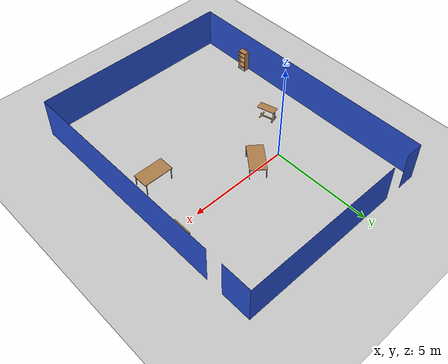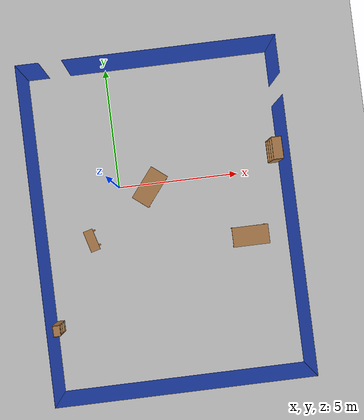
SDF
<sdf version="1.6">
 <world name="default">
  <model name="ground_plane">
   <static>1</static>
   <link name="link">
    <collision name="collision">
     <geometry><plane><normal>0 0 1</normal><size>100 100</size></plane></geometry>
     <surface><friction><ode><mu>100</mu><mu2>50</mu2></ode></friction></surface>
    </collision>
    <visual name="visual">
     <cast_shadows>0</cast_shadows>
     <geometry><plane><normal>0 0 1</normal><size>100 100</size></plane></geometry>
     <material>
      <script><uri>file://media/materials/scripts/gazebo.material</uri><name>Gazebo/Grey</name></script>
     </material>
    </visual>
   </link>
  </model>
  <model name="apartment_wall_collision">
   <link name="link">
    <inertial>
     <mass>50</mass>
     <inertia><ixx>1</ixx><ixy>0</ixy><ixz>0</ixz><iyy>1</iyy><iyz>0</iyz><izz>1</izz></inertia>
    </inertial>
    <visual name="wall_x00y00_x00y15">
     <pose>-0.002 6.59 1.04 0 -0 0</pose>
     <geometry><box><size>0.002 13.2 2.08</size></box></geometry>
     <material>
      <script>
       <uri>model://base_materials/color/scripts</uri>
       <name>hsr_color/cornflowerblue_transparency1</name>
      </script>
     </material>
    </visual>
    <collision name="wall_x00y00_x00y15">
     <pose>-0.002 6.59 1.04 0 -0 0</pose>
     <geometry><box><size>0.002 13.2 2.08</size></box></geometry>
    </collision>
    <visual name="wall_x00y00_x13y00">
     <pose>5.0375 -0.002 1.04 0 -0 0</pose>
     <geometry><box><size>10.08 0.002 2.08</size></box></geometry>
     <material>
      <script>
       <uri>model://base_materials/color/scripts</uri>
       <name>hsr_color/cornflowerblue_transparency1</name>
      </script>
     </material>
    </visual>
    <collision name="wall_x00y00_x13y00">
     <pose>5.0375 -0.002 1.04 0 -0 0</pose>
     <geometry><box><size>10.08 0.002 2.08</size></box></geometry>
    </collision>
    <visual name="wall_x13y00_x13y12">
     <pose>10.077 5.42 1.04 0 -0 0</pose>
     <geometry><box><size>0.002 10.84 2.08</size></box></geometry>
     <material>
      <script>
       <uri>model://base_materials/color/scripts</uri>
       <name>hsr_color/cornflowerblue_transparency1</name>
      </script>
     </material>
    </visual>
    <collision name="wall_x13y00_x13y12">
     <pose>10.077 5.42 1.04 0 -0 0</pose>
     <geometry><box><size>0.002 10.84 2.08</size></box></geometry>
    </collision>
    <visual name="wall_x13y14_x13y16">
     <pose>10.077 12.43 1.04 0 -0 0</pose>
     <geometry><box><size>0.002 1.5 2.08</size></box></geometry>
     <material>
      <script>
       <uri>model://base_materials/color/scripts</uri>
       <name>hsr_color/cornflowerblue_transparency1</name>
      </script>
     </material>
    </visual>
    <collision name="wall_x13y14_x13y16">
     <pose>10.077 12.43 1.04 0 -0 0</pose>
     <geometry><box><size>0.002 1.5 2.08</size></box></geometry>
    </collision>
    <visual name="wall_x00y16_x01y16">
     <pose>0.4525 13.182 1.04 0 -0 0</pose>
     <geometry><box><size>0.904 0.002 2.08</size></box></geometry>
     <material>
      <script>
       <uri>model://base_materials/color/scripts</uri>
       <name>hsr_color/cornflowerblue_transparency1</name>
      </script>
     </material>
    </visual>
    <collision name="wall_x00y16_x01y16">
     <pose>0.4525 13.182 1.04 0 -0 0</pose>
     <geometry><box><size>0.904 0.002 2.08</size></box></geometry>
    </collision>
    <visual name="wall_x03y16_x13y16">
     <pose>5.948 13.182 1.04 0 -0 0</pose>
     <geometry><box><size>8.3 0.002 2.08</size></box></geometry>
     <material>
      <script>
       <uri>model://base_materials/color/scripts</uri>
       <name>hsr_color/cornflowerblue_transparency1</name>
      </script>
     </material>
    </visual>
    <collision name="wall_x03y16_x13y16">
     <pose>5.948 13.182 1.04 0 -0 0</pose>
     <geometry><box><size>8.3 0.002 2.08</size></box></geometry>
    </collision>
    <velocity_decay><linear>0</linear><angular>0</angular></velocity_decay>
   </link>
   <static>1</static>
   <pose>-3.26861 -8.19915 0 0 -0 0</pose>
  </model>
  <model name="hcr_shefl_2">
   <link name="link">
    <inertial>
     <mass>5</mass>
     <inertia><ixx>1</ixx><ixy>0</ixy><ixz>0</ixz><iyy>1</iyy><iyz>0</iyz><izz>1</izz></inertia>
    </inertial>
    <visual name="left_board">
     <pose>-0.1475 0.009 -0.598 0 -0 0</pose>
     <geometry><box><size>0.295 0.018 1.196</size></box></geometry>
     <material>
      <script><uri>model://base_materials/wood/scripts/wood.material</uri><name>base_materials/wood</name></script>
     </material>
    </visual>
    <collision name="collision_left_board">
     <pose>-0.1475 0.009 -0.598 0 -0 0</pose>
     <geometry><box><size>0.295 0.018 1.196</size></box></geometry>
    </collision>
    <visual name="right_board">
     <pose>-0.1475 0.441 -0.598 0 -0 0</pose>
     <geometry><box><size>0.295 0.018 1.196</size></box></geometry>
     <material>
      <script><uri>model://base_materials/wood/scripts/wood.material</uri><name>base_materials/wood</name></script>
     </material>
    </visual>
    <collision name="collision_right_board">
     <pose>-0.1475 0.441 -0.598 0 -0 0</pose>
     <geometry><box><size>0.295 0.018 1.196</size></box></geometry>
    </collision>
    <visual name="top_board">
     <pose>-0.1475 0.225 -0.0175 0 -0 0</pose>
     <geometry><box><size>0.295 0.414 0.035</size></box></geometry>
     <material>
      <script><uri>model://base_materials/wood/scripts/wood.material</uri><name>base_materials/wood</name></script>
     </material>
    </visual>
    <collision name="collision_top_board">
     <pose>-0.1475 0.225 -0.0175 0 -0 0</pose>
     <geometry><box><size>0.295 0.414 0.035</size></box></geometry>
    </collision>
    <visual name="1st_shelf">
     <pose>-0.162 0.225 -0.311 0 -0 0</pose>
     <geometry><box><size>0.266 0.414 0.018</size></box></geometry>
     <material>
      <script><uri>model://base_materials/wood/scripts/wood.material</uri><name>base_materials/wood</name></script>
     </material>
    </visual>
    <collision name="collision_1st_shelf">
     <pose>-0.162 0.225 -0.311 0 -0 0</pose>
     <geometry><box><size>0.266 0.414 0.018</size></box></geometry>
    </collision>
    <visual name="2nd_shelf">
     <pose>-0.162 0.225 -0.613 0 -0 0</pose>
     <geometry><box><size>0.266 0.414 0.018</size></box></geometry>
     <material>
      <script><uri>model://base_materials/wood/scripts/wood.material</uri><name>base_materials/wood</name></script>
     </material>
    </visual>
    <collision name="collision_2nd_shelf">
     <pose>-0.162 0.225 -0.613 0 -0 0</pose>
     <geometry><box><size>0.266 0.414 0.018</size></box></geometry>
    </collision>
    <visual name="bottom_board">
     <pose>-0.1475 0.225 -1.0335 0 -0 0</pose>
     <geometry><box><size>0.295 0.414 0.325</size></box></geometry>
     <material>
      <script><uri>model://base_materials/wood/scripts/wood.material</uri><name>base_materials/wood</name></script>
     </material>
    </visual>
    <collision name="collision_bottom_board">
     <pose>-0.1475 0.225 -1.0335 0 -0 0</pose>
     <geometry><box><size>0.295 0.414 0.325</size></box></geometry>
    </collision>
    <visual name="back_board">
     <pose>-0.286 0.225 -0.598 0 -0 0</pose>
     <geometry><box><size>0.018 0.414 1.196</size></box></geometry>
     <material>
      <script><uri>model://base_materials/wood/scripts/wood.material</uri><name>base_materials/wood</name></script>
     </material>
    </visual>
    <collision name="collision_back_board">
     <pose>-0.286 0.225 -0.598 0 -0 0</pose>
     <geometry><box><size>0.018 0.414 1.196</size></box></geometry>
    </collision>
    <visual name="marker_0030">
     <pose>0 0.32 -1.015 0 -0 0</pose>
     <geometry><box><size>0.0001 0.21 0.21</size></box></geometry>
     <material>
      <script>
       <uri>model://hcr_shelf_2/marker/0030/scripts</uri>
       <uri>model://hcr_shelf_2/marker/0030/textures</uri>
       <name>Marker/0030</name>
      </script>
     </material>
    </visual>
    <collision name="collision_marker_0030">
     <pose>0 0.32 -1.015 0 -0 0</pose>
     <geometry><box><size>0.0001 0.21 0.21</size></box></geometry>
    </collision>
    <velocity_decay><linear>0</linear><angular>0</angular></velocity_decay>
   </link>
   <static>1</static>
   <pose>-2.96206 -5.70339 1.09688 0 -0 0</pose>
  </model>
  <model name="table">
   <static>1</static>
   <link name="link">
    <collision name="surface">
     <pose>0 0 1 0 -0 0</pose>
     <geometry><box><size>1.5 0.8 0.03</size></box></geometry>
     <surface><friction><ode><mu>0.6</mu><mu2>0.6</mu2></ode></friction></surface>
    </collision>
    <visual name="visual1">
     <pose>0 0 1 0 -0 0</pose>
     <geometry><box><size>1.5 0.8 0.03</size></box></geometry>
     <material>
      <script><uri>file://media/materials/scripts/gazebo.material</uri><name>Gazebo/Wood</name></script>
     </material>
    </visual>
    <collision name="front_left_leg">
     <pose>0.68 0.38 0.5 0 -0 0</pose>
     <geometry><cylinder><radius>0.02</radius><length>1</length></cylinder></geometry>
    </collision>
    <visual name="front_left_leg">
     <pose>0.68 0.38 0.5 0 -0 0</pose>
     <geometry><cylinder><radius>0.02</radius><length>1</length></cylinder></geometry>
     <material>
      <script><uri>file://media/materials/scripts/gazebo.material</uri><name>Gazebo/Grey</name></script>
     </material>
    </visual>
    <collision name="front_right_leg">
     <pose>0.68 -0.38 0.5 0 -0 0</pose>
     <geometry><cylinder><radius>0.02</radius><length>1</length></cylinder></geometry>
    </collision>
    <visual name="front_right_leg">
     <pose>0.68 -0.38 0.5 0 -0 0</pose>
     <geometry><cylinder><radius>0.02</radius><length>1</length></cylinder></geometry>
     <material>
      <script><uri>file://media/materials/scripts/gazebo.material</uri><name>Gazebo/Grey</name></script>
     </material>
    </visual>
    <collision name="back_right_leg">
     <pose>-0.68 -0.38 0.5 0 -0 0</pose>
     <geometry><cylinder><radius>0.02</radius><length>1</length></cylinder></geometry>
    </collision>
    <visual name="back_right_leg">
     <pose>-0.68 -0.38 0.5 0 -0 0</pose>
     <geometry><cylinder><radius>0.02</radius><length>1</length></cylinder></geometry>
     <material>
      <script><uri>file://media/materials/scripts/gazebo.material</uri><name>Gazebo/Grey</name></script>
     </material>
    </visual>
    <collision name="back_left_leg">
     <pose>-0.68 0.38 0.5 0 -0 0</pose>
     <geometry><cylinder><radius>0.02</radius><length>1</length></cylinder></geometry>
    </collision>
    <visual name="back_left_leg">
     <pose>-0.68 0.38 0.5 0 -0 0</pose>
     <geometry><cylinder><radius>0.02</radius><length>1</length></cylinder></geometry>
     <material>
      <script><uri>file://media/materials/scripts/gazebo.material</uri><name>Gazebo/Grey</name></script>
     </material>
    </visual>
   </link>
   <pose>1.2942 -0.166561 -0.380127 0 -0 0.901313</pose>
  </model>
  <model name="bookshelf_clone_0">
   <static>1</static>
   <link name="link">
    <inertial><mass>1</mass></inertial>
    <collision name="back">
     <pose>0 0.005 0.6 0 -0 0</pose>
     <geometry><box><size>0.9 0.01 1.2</size></box></geometry>
    </collision>
    <visual name="visual1">
     <pose>0 0.005 0.6 0 -0 0</pose>
     <geometry><box><size>0.9 0.01 1.2</size></box></geometry>
     <material>
      <script><uri>file://media/materials/scripts/gazebo.material</uri><name>Gazebo/Wood</name></script>
     </material>
    </visual>
    <collision name="left_side">
     <pose>0.45 -0.195 0.6 0 -0 0</pose>
     <geometry><box><size>0.02 0.4 1.2</size></box></geometry>
    </collision>
    <visual name="visual2">
     <pose>0.45 -0.195 0.6 0 -0 0</pose>
     <geometry><box><size>0.02 0.4 1.2</size></box></geometry>
     <material>
      <script><uri>file://media/materials/scripts/gazebo.material</uri><name>Gazebo/Wood</name></script>
     </material>
    </visual>
    <collision name="right_side">
     <pose>-0.45 -0.195 0.6 0 -0 0</pose>
     <geometry><box><size>0.02 0.4 1.2</size></box></geometry>
    </collision>
    <visual name="visual3">
     <pose>-0.45 -0.195 0.6 0 -0 0</pose>
     <geometry><box><size>0.02 0.4 1.2</size></box></geometry>
     <material>
      <script><uri>file://media/materials/scripts/gazebo.material</uri><name>Gazebo/Wood</name></script>
     </material>
    </visual>
    <collision name="bottom">
     <pose>0 -0.195 0.03 0 -0 0</pose>
     <geometry><box><size>0.88 0.4 0.06</size></box></geometry>
    </collision>
    <visual name="visual4">
     <pose>0 -0.195 0.03 0 -0 0</pose>
     <geometry><box><size>0.88 0.4 0.06</size></box></geometry>
     <material>
      <script><uri>file://media/materials/scripts/gazebo.material</uri><name>Gazebo/Wood</name></script>
     </material>
    </visual>
    <collision name="top">
     <pose>0 -0.195 1.19 0 -0 0</pose>
     <geometry><box><size>0.88 0.4 0.02</size></box></geometry>
    </collision>
    <visual name="visual5">
     <pose>0 -0.195 1.19 0 -0 0</pose>
     <geometry><box><size>0.88 0.4 0.02</size></box></geometry>
     <material>
      <script><uri>file://media/materials/scripts/gazebo.material</uri><name>Gazebo/Wood</name></script>
     </material>
    </visual>
    <collision name="low_shelf">
     <pose>0 -0.195 0.43 0 -0 0</pose>
     <geometry><box><size>0.88 0.4 0.02</size></box></geometry>
    </collision>
    <visual name="visual6">
     <pose>0 -0.195 0.43 0 -0 0</pose>
     <geometry><box><size>0.88 0.4 0.02</size></box></geometry>
     <material>
      <script><uri>file://media/materials/scripts/gazebo.material</uri><name>Gazebo/Wood</name></script>
     </material>
    </visual>
    <collision name="high_shelf">
     <pose>0 -0.195 0.8 0 -0 0</pose>
     <geometry><box><size>0.88 0.4 0.02</size></box></geometry>
    </collision>
    <visual name="visual7">
     <pose>0 -0.195 0.8 0 -0 0</pose>
     <geometry><box><size>0.88 0.4 0.02</size></box></geometry>
     <material>
      <script><uri>file://media/materials/scripts/gazebo.material</uri><name>Gazebo/Wood</name></script>
     </material>
    </visual>
   </link>
   <pose>6.75738 0.730992 0 0 0 -1.5707</pose>
  </model>
  <model name="table_clone">
   <static>1</static>
   <link name="link">
    <collision name="surface">
     <pose>0 0 1 0 -0 0</pose>
     <geometry><box><size>1.5 0.8 0.03</size></box></geometry>
     <surface><friction><ode><mu>0.6</mu><mu2>0.6</mu2></ode></friction></surface>
    </collision>
    <visual name="visual1">
     <pose>0 0 1 0 -0 0</pose>
     <geometry><box><size>1.5 0.8 0.03</size></box></geometry>
     <material>
      <script><uri>file://media/materials/scripts/gazebo.material</uri><name>Gazebo/Wood</name></script>
     </material>
    </visual>
    <collision name="front_left_leg">
     <pose>0.68 0.38 0.5 0 -0 0</pose>
     <geometry><cylinder><radius>0.02</radius><length>1</length></cylinder></geometry>
    </collision>
    <visual name="front_left_leg">
     <pose>0.68 0.38 0.5 0 -0 0</pose>
     <geometry><cylinder><radius>0.02</radius><length>1</length></cylinder></geometry>
     <material>
      <script><uri>file://media/materials/scripts/gazebo.material</uri><name>Gazebo/Grey</name></script>
     </material>
    </visual>
    <collision name="front_right_leg">
     <pose>0.68 -0.38 0.5 0 -0 0</pose>
     <geometry><cylinder><radius>0.02</radius><length>1</length></cylinder></geometry>
    </collision>
    <visual name="front_right_leg">
     <pose>0.68 -0.38 0.5 0 -0 0</pose>
     <geometry><cylinder><radius>0.02</radius><length>1</length></cylinder></geometry>
     <material>
      <script><uri>file://media/materials/scripts/gazebo.material</uri><name>Gazebo/Grey</name></script>
     </material>
    </visual>
    <collision name="back_right_leg">
     <pose>-0.68 -0.38 0.5 0 -0 0</pose>
     <geometry><cylinder><radius>0.02</radius><length>1</length></cylinder></geometry>
    </collision>
    <visual name="back_right_leg">
     <pose>-0.68 -0.38 0.5 0 -0 0</pose>
     <geometry><cylinder><radius>0.02</radius><length>1</length></cylinder></geometry>
     <material>
      <script><uri>file://media/materials/scripts/gazebo.material</uri><name>Gazebo/Grey</name></script>
     </material>
    </visual>
    <collision name="back_left_leg">
     <pose>-0.68 0.38 0.5 0 -0 0</pose>
     <geometry><cylinder><radius>0.02</radius><length>1</length></cylinder></geometry>
    </collision>
    <visual name="back_left_leg">
     <pose>-0.68 0.38 0.5 0 -0 0</pose>
     <geometry><cylinder><radius>0.02</radius><length>1</length></cylinder></geometry>
     <material>
      <script><uri>file://media/materials/scripts/gazebo.material</uri><name>Gazebo/Grey</name></script>
     </material>
    </visual>
   </link>
   <pose>5.16052 -2.64347 -0.380127 0 -0 0</pose>
  </model>
  <model name="bed_table">
   <link name="link">
    <inertial>
     <pose>0 0.449 0.001 0 -0 0</pose>
     <mass>10</mass>
     <inertia><ixx>1</ixx><ixy>0</ixy><ixz>0</ixz><iyy>1</iyy><iyz>0</iyz><izz>1</izz></inertia>
    </inertial>
    <visual name="top_board">
     <pose>0 0.449 0.625 0 -0 0</pose>
     <geometry><box><size>0.398 0.898 0.02</size></box></geometry>
     <material>
      <script><uri>model://base_materials/wood/scripts/wood.material</uri><name>base_materials/wood</name></script>
     </material>
    </visual>
    <collision name="collision_top_board">
     <pose>0 0.449 0.625 0 -0 0</pose>
     <geometry><box><size>0.398 0.898 0.02</size></box></geometry>
    </collision>
    <visual name="right_pole">
     <pose>0 0.817 0.3515 0 -0 0</pose>
     <geometry><box><size>0.072 0.094 0.527</size></box></geometry>
     <material>
      <script><uri>model://base_materials/color/scripts</uri><name>hsr_color/grey</name></script>
     </material>
    </visual>
    <collision name="collision_right_pole">
     <pose>0 0.817 0.3515 0 -0 0</pose>
     <geometry><box><size>0.072 0.094 0.527</size></box></geometry>
    </collision>
    <visual name="right_bottom_pole">
     <pose>0 0.8225 0.044 0 -0 0</pose>
     <geometry><box><size>0.42 0.063 0.088</size></box></geometry>
     <material>
      <script><uri>model://base_materials/wood/scripts/wood.material</uri><name>base_materials/wood</name></script>
     </material>
    </visual>
    <collision name="collision_right_bottom_pole">
     <pose>0 0.8225 0.044 0 -0 0</pose>
     <geometry><box><size>0.42 0.063 0.088</size></box></geometry>
    </collision>
    <visual name="bottom_center_pole">
     <pose>0 0.502 0.03 0 -0 0</pose>
     <geometry><box><size>0.06 0.578 0.03</size></box></geometry>
     <material>
      <script><uri>model://base_materials/wood/scripts/wood.material</uri><name>base_materials/wood</name></script>
     </material>
    </visual>
    <collision name="collision_bottom_center_pole">
     <pose>0 0.502 0.03 0 -0 0</pose>
     <geometry><box><size>0.06 0.578 0.03</size></box></geometry>
    </collision>
    <visual name="left_bottom_pole">
     <pose>0 0.18 0.0325 0 -0 0</pose>
     <geometry><box><size>0.418 0.066 0.025</size></box></geometry>
     <material>
      <script><uri>model://base_materials/wood/scripts/wood.material</uri><name>base_materials/wood</name></script>
     </material>
    </visual>
    <collision name="collision_left_bottom_pole">
     <pose>0 0.18 0.0325 0 -0 0</pose>
     <geometry><box><size>0.418 0.066 0.025</size></box></geometry>
    </collision>
    <visual name="marker_0010">
     <pose>0 0.14 0.093 0 -0 0</pose>
     <geometry><box><size>0.09 0.001 0.09</size></box></geometry>
     <material>
      <script>
       <uri>model://bed_table/marker/0010/scripts</uri>
       <uri>model://bed_table/marker/0010/textures</uri>
       <name>Marker/0010</name>
      </script>
     </material>
    </visual>
    <collision name="collision_marker_0010">
     <pose>0 0.14 0.093 0 -0 0</pose>
     <geometry><box><size>0.09 0.001 0.09</size></box></geometry>
    </collision>
    <visual name="marker_0010_back_plate">
     <pose>0 0.146 0.093 0 -0 0</pose>
     <geometry><box><size>0.09 0.01 0.09</size></box></geometry>
     <material>
      <script><uri>model://base_materials/wood/scripts/wood.material</uri><name>base_materials/wood</name></script>
     </material>
    </visual>
    <collision name="collision_marker_0010_back_plate">
     <pose>0 0.146 0.093 0 -0 0</pose>
     <geometry><box><size>0.09 0.01 0.09</size></box></geometry>
    </collision>
    <velocity_decay><linear>0</linear><angular>0</angular></velocity_decay>
   </link>
   <static>1</static>
   <pose>-1.21832 -2.49117 0 0 -0 0.272851</pose>
  </model>
 </world>
</sdf>
